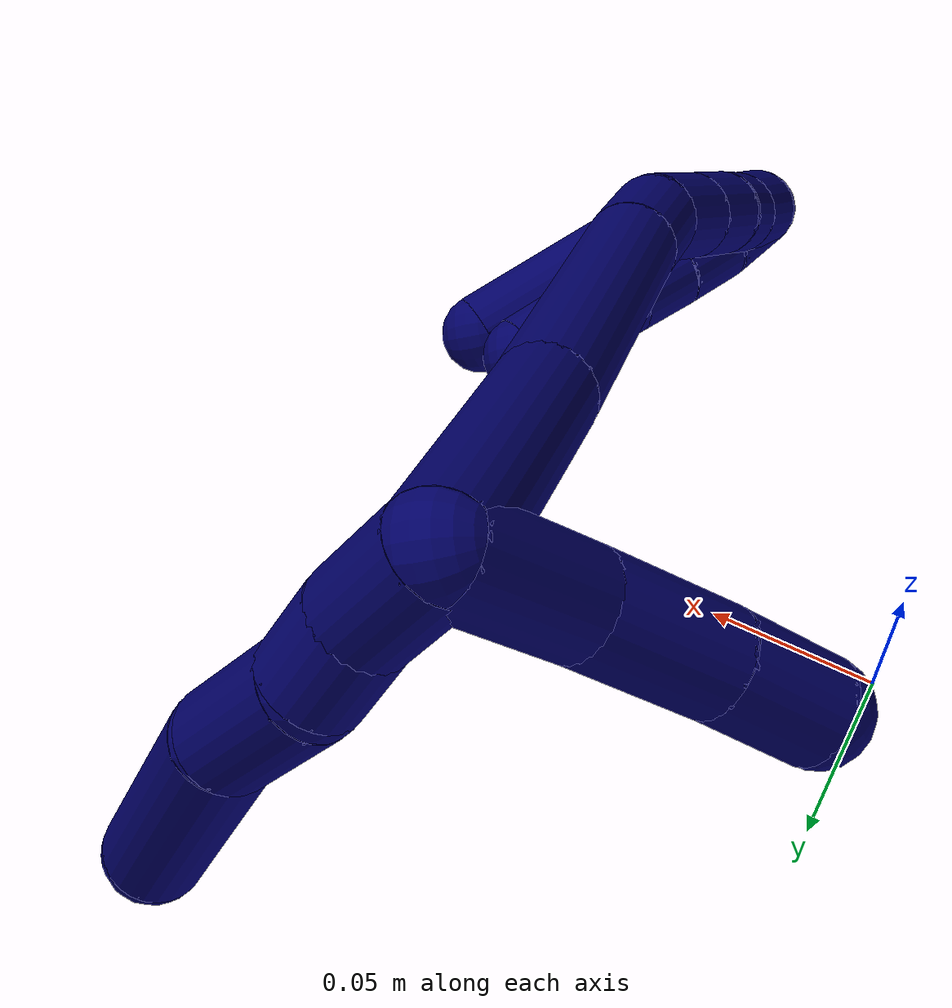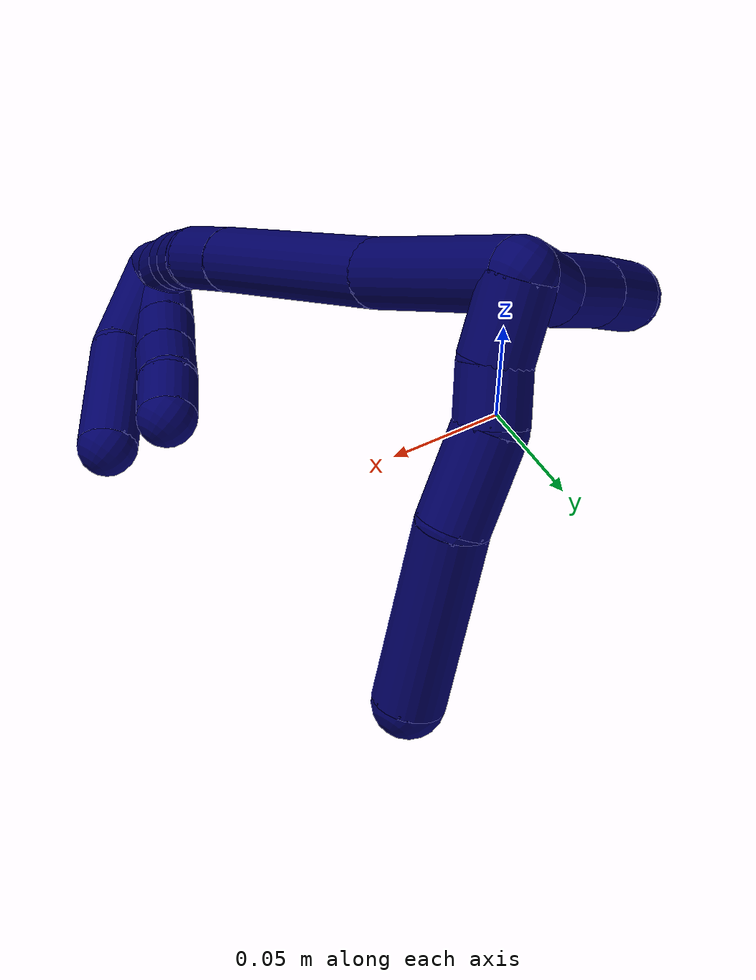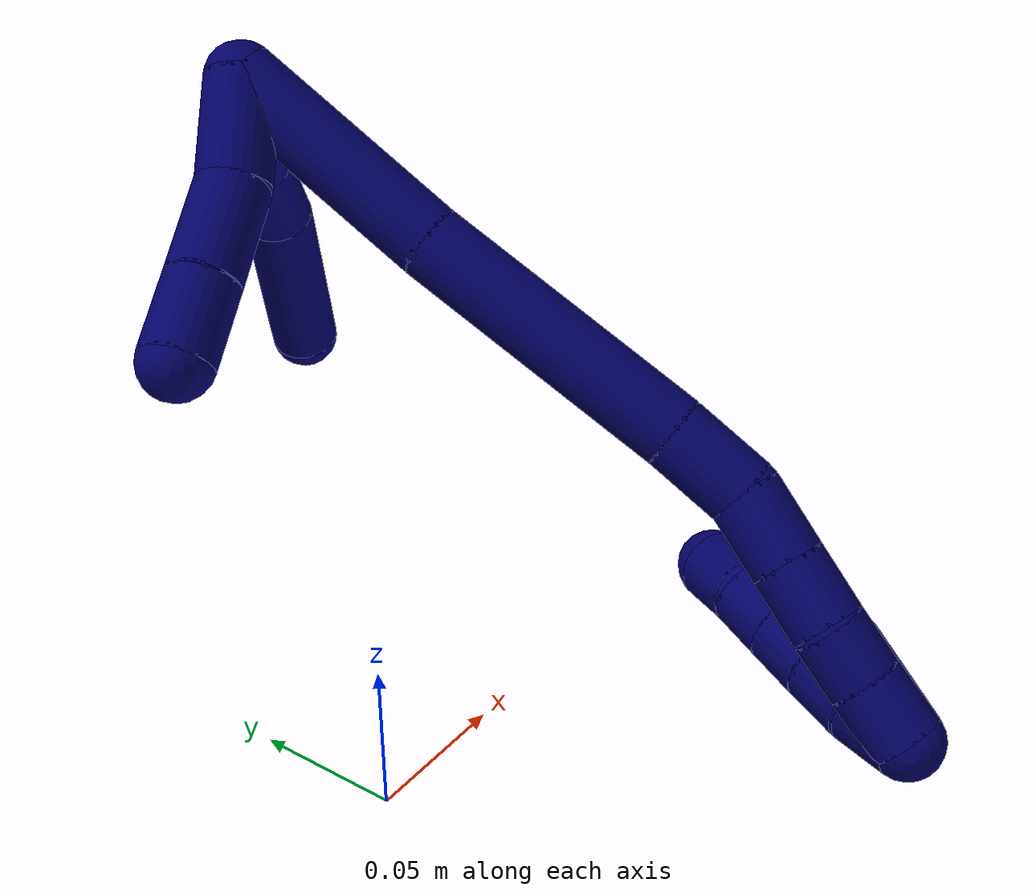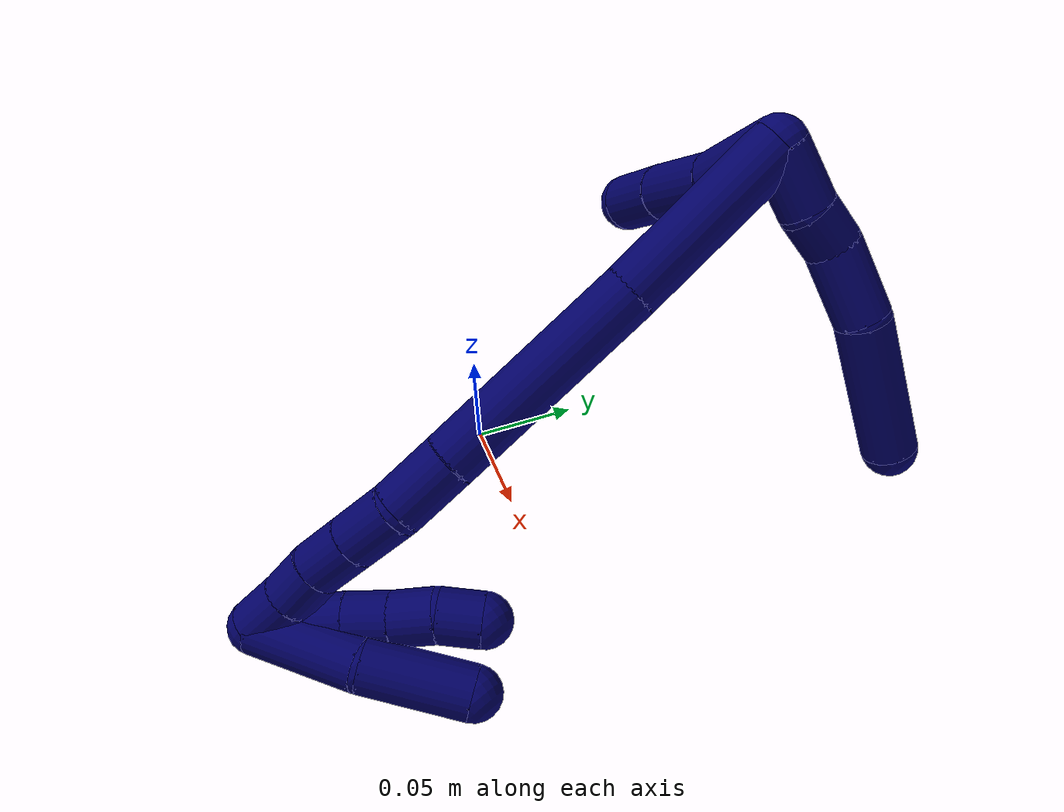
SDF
<sdf version="1.7">
 <world name="default">
  <model name="7">
   <static>0</static>
   <link name="7">
    <collision name="collision-cylinder-e_1_2_8">
     <pose>0.006175 -0.004767 0.011803 0.383822 0.451653 0.089221</pose>
     <geometry><cylinder><radius>0.0125</radius><length>0.028296</length></cylinder></geometry>
     <surface>
      <friction><ode><mu>1.16</mu><mu2>1.16</mu2><slip1>0</slip1><slip2>0</slip2></ode></friction>
      <contact><ode><kp>1e+06</kp><kd>1</kd><max_vel>0</max_vel><min_depth>0.001</min_depth></ode></contact>
     </surface>
    </collision>
    <visual name="visual-cylinder-e_1_2_8">
     <pose>0.006175 -0.004767 0.011803 0.383822 0.451653 0.089221</pose>
     <geometry><cylinder><radius>0.0125</radius><length>0.028296</length></cylinder></geometry>
     <material><ambient>0.003922 0 0.403922 1</ambient></material>
    </visual>
    <collision name="collision-cylinder-e_2_8_9">
     <pose>0.018493 -0.011401 0.031478 0.232927 0.649422 0.078725</pose>
     <geometry><cylinder><radius>0.0125</radius><length>0.020317</length></cylinder></geometry>
     <surface>
      <friction><ode><mu>1.16</mu><mu2>1.16</mu2><slip1>0</slip1><slip2>0</slip2></ode></friction>
      <contact><ode><kp>1e+06</kp><kd>1</kd><max_vel>0</max_vel><min_depth>0.001</min_depth></ode></contact>
     </surface>
    </collision>
    <visual name="visual-cylinder-e_2_8_9">
     <pose>0.018493 -0.011401 0.031478 0.232927 0.649422 0.078725</pose>
     <geometry><cylinder><radius>0.0125</radius><length>0.020317</length></cylinder></geometry>
     <material><ambient>0.003922 0 0.403922 1</ambient></material>
    </visual>
    <collision name="collision-cylinder-e_3_9_10">
     <pose>0.030842 -0.019607 0.054033 0.40756 0.370178 0.077344</pose>
     <geometry><cylinder><radius>0.0125</radius><length>0.034309</length></cylinder></geometry>
     <surface>
      <friction><ode><mu>1.16</mu><mu2>1.16</mu2><slip1>0</slip1><slip2>0</slip2></ode></friction>
      <contact><ode><kp>1e+06</kp><kd>1</kd><max_vel>0</max_vel><min_depth>0.001</min_depth></ode></contact>
     </surface>
    </collision>
    <visual name="visual-cylinder-e_3_9_10">
     <pose>0.030842 -0.019607 0.054033 0.40756 0.370178 0.077344</pose>
     <geometry><cylinder><radius>0.0125</radius><length>0.034309</length></cylinder></geometry>
     <material><ambient>0.003922 0 0.403922 1</ambient></material>
    </visual>
    <collision name="collision-cylinder-e_4_10_6">
     <pose>0.053843 -0.042848 0.092319 0.621432 0.524458 0.171957</pose>
     <geometry><cylinder><radius>0.0125</radius><length>0.067079</length></cylinder></geometry>
     <surface>
      <friction><ode><mu>1.16</mu><mu2>1.16</mu2><slip1>0</slip1><slip2>0</slip2></ode></friction>
      <contact><ode><kp>1e+06</kp><kd>1</kd><max_vel>0</max_vel><min_depth>0.001</min_depth></ode></contact>
     </surface>
    </collision>
    <visual name="visual-cylinder-e_4_10_6">
     <pose>0.053843 -0.042848 0.092319 0.621432 0.524458 0.171957</pose>
     <geometry><cylinder><radius>0.0125</radius><length>0.067079</length></cylinder></geometry>
     <material><ambient>0.003922 0 0.403922 1</ambient></material>
    </visual>
    <collision name="collision-cylinder-e_1_2_11">
     <pose>0.009479 -0.014551 -0.006799 2.00792 0.533151 0.810532</pose>
     <geometry><cylinder><radius>0.0125</radius><length>0.037299</length></cylinder></geometry>
     <surface>
      <friction><ode><mu>1.16</mu><mu2>1.16</mu2><slip1>0</slip1><slip2>0</slip2></ode></friction>
      <contact><ode><kp>1e+06</kp><kd>1</kd><max_vel>0</max_vel><min_depth>0.001</min_depth></ode></contact>
     </surface>
    </collision>
    <visual name="visual-cylinder-e_1_2_11">
     <pose>0.009479 -0.014551 -0.006799 2.00792 0.533151 0.810532</pose>
     <geometry><cylinder><radius>0.0125</radius><length>0.037299</length></cylinder></geometry>
     <material><ambient>0.003922 0 0.403922 1</ambient></material>
    </visual>
    <collision name="collision-cylinder-e_2_11_12">
     <pose>0.028837 -0.040022 -0.022698 2.26548 0.6074 1.17932</pose>
     <geometry><cylinder><radius>0.0125</radius><length>0.034622</length></cylinder></geometry>
     <surface>
      <friction><ode><mu>1.16</mu><mu2>1.16</mu2><slip1>0</slip1><slip2>0</slip2></ode></friction>
      <contact><ode><kp>1e+06</kp><kd>1</kd><max_vel>0</max_vel><min_depth>0.001</min_depth></ode></contact>
     </surface>
    </collision>
    <visual name="visual-cylinder-e_2_11_12">
     <pose>0.028837 -0.040022 -0.022698 2.26548 0.6074 1.17932</pose>
     <geometry><cylinder><radius>0.0125</radius><length>0.034622</length></cylinder></geometry>
     <material><ambient>0.003922 0 0.403922 1</ambient></material>
    </visual>
    <collision name="collision-cylinder-e_3_12_5">
     <pose>0.04715 -0.059768 -0.038733 2.2369 0.644319 1.20372</pose>
     <geometry><cylinder><radius>0.0125</radius><length>0.028079</length></cylinder></geometry>
     <surface>
      <friction><ode><mu>1.16</mu><mu2>1.16</mu2><slip1>0</slip1><slip2>0</slip2></ode></friction>
      <contact><ode><kp>1e+06</kp><kd>1</kd><max_vel>0</max_vel><min_depth>0.001</min_depth></ode></contact>
     </surface>
    </collision>
    <visual name="visual-cylinder-e_3_12_5">
     <pose>0.04715 -0.059768 -0.038733 2.2369 0.644319 1.20372</pose>
     <geometry><cylinder><radius>0.0125</radius><length>0.028079</length></cylinder></geometry>
     <material><ambient>0.003922 0 0.403922 1</ambient></material>
    </visual>
    <collision name="collision-cylinder-e_1_2_13">
     <pose>-0.009412 -0.039154 0.001716 1.52699 -0.235687 -0.225671</pose>
     <geometry><cylinder><radius>0.0125</radius><length>0.080612</length></cylinder></geometry>
     <surface>
      <friction><ode><mu>1.16</mu><mu2>1.16</mu2><slip1>0</slip1><slip2>0</slip2></ode></friction>
      <contact><ode><kp>1e+06</kp><kd>1</kd><max_vel>0</max_vel><min_depth>0.001</min_depth></ode></contact>
     </surface>
    </collision>
    <visual name="visual-cylinder-e_1_2_13">
     <pose>-0.009412 -0.039154 0.001716 1.52699 -0.235687 -0.225671</pose>
     <geometry><cylinder><radius>0.0125</radius><length>0.080612</length></cylinder></geometry>
     <material><ambient>0.003922 0 0.403922 1</ambient></material>
    </visual>
    <collision name="collision-cylinder-e_2_13_14">
     <pose>-0.032958 -0.125725 0.004724 1.54356 -0.289606 -0.281929</pose>
     <geometry><cylinder><radius>0.0125</radius><length>0.098991</length></cylinder></geometry>
     <surface>
      <friction><ode><mu>1.16</mu><mu2>1.16</mu2><slip1>0</slip1><slip2>0</slip2></ode></friction>
      <contact><ode><kp>1e+06</kp><kd>1</kd><max_vel>0</max_vel><min_depth>0.001</min_depth></ode></contact>
     </surface>
    </collision>
    <visual name="visual-cylinder-e_2_13_14">
     <pose>-0.032958 -0.125725 0.004724 1.54356 -0.289606 -0.281929</pose>
     <geometry><cylinder><radius>0.0125</radius><length>0.098991</length></cylinder></geometry>
     <material><ambient>0.003922 0 0.403922 1</ambient></material>
    </visual>
    <collision name="collision-cylinder-e_3_14_15">
     <pose>-0.050572 -0.187352 0.006125 1.56308 -0.240097 -0.23827</pose>
     <geometry><cylinder><radius>0.0125</radius><length>0.029262</length></cylinder></geometry>
     <surface>
      <friction><ode><mu>1.16</mu><mu2>1.16</mu2><slip1>0</slip1><slip2>0</slip2></ode></friction>
      <contact><ode><kp>1e+06</kp><kd>1</kd><max_vel>0</max_vel><min_depth>0.001</min_depth></ode></contact>
     </surface>
    </collision>
    <visual name="visual-cylinder-e_3_14_15">
     <pose>-0.050572 -0.187352 0.006125 1.56308 -0.240097 -0.23827</pose>
     <geometry><cylinder><radius>0.0125</radius><length>0.029262</length></cylinder></geometry>
     <material><ambient>0.003922 0 0.403922 1</ambient></material>
    </visual>
    <collision name="collision-cylinder-e_4_15_16">
     <pose>-0.053579 -0.214276 0.004312 1.72087 0.036734 0.042704</pose>
     <geometry><cylinder><radius>0.0125</radius><length>0.025731</length></cylinder></geometry>
     <surface>
      <friction><ode><mu>1.16</mu><mu2>1.16</mu2><slip1>0</slip1><slip2>0</slip2></ode></friction>
      <contact><ode><kp>1e+06</kp><kd>1</kd><max_vel>0</max_vel><min_depth>0.001</min_depth></ode></contact>
     </surface>
    </collision>
    <visual name="visual-cylinder-e_4_15_16">
     <pose>-0.053579 -0.214276 0.004312 1.72087 0.036734 0.042704</pose>
     <geometry><cylinder><radius>0.0125</radius><length>0.025731</length></cylinder></geometry>
     <material><ambient>0.003922 0 0.403922 1</ambient></material>
    </visual>
    <collision name="collision-cylinder-e_5_16_17">
     <pose>-0.052757 -0.238362 0.00069 1.71916 0.030357 0.03523</pose>
     <geometry><cylinder><radius>0.0125</radius><length>0.023011</length></cylinder></geometry>
     <surface>
      <friction><ode><mu>1.16</mu><mu2>1.16</mu2><slip1>0</slip1><slip2>0</slip2></ode></friction>
      <contact><ode><kp>1e+06</kp><kd>1</kd><max_vel>0</max_vel><min_depth>0.001</min_depth></ode></contact>
     </surface>
    </collision>
    <visual name="visual-cylinder-e_5_16_17">
     <pose>-0.052757 -0.238362 0.00069 1.71916 0.030357 0.03523</pose>
     <geometry><cylinder><radius>0.0125</radius><length>0.023011</length></cylinder></geometry>
     <material><ambient>0.003922 0 0.403922 1</ambient></material>
    </visual>
    <collision name="collision-cylinder-e_6_17_18">
     <pose>-0.052106 -0.259776 -0.001031 1.57292 0.030095 0.030159</pose>
     <geometry><cylinder><radius>0.0125</radius><length>0.02009</length></cylinder></geometry>
     <surface>
      <friction><ode><mu>1.16</mu><mu2>1.16</mu2><slip1>0</slip1><slip2>0</slip2></ode></friction>
      <contact><ode><kp>1e+06</kp><kd>1</kd><max_vel>0</max_vel><min_depth>0.001</min_depth></ode></contact>
     </surface>
    </collision>
    <visual name="visual-cylinder-e_6_17_18">
     <pose>-0.052106 -0.259776 -0.001031 1.57292 0.030095 0.030159</pose>
     <geometry><cylinder><radius>0.0125</radius><length>0.02009</length></cylinder></geometry>
     <material><ambient>0.003922 0 0.403922 1</ambient></material>
    </visual>
    <collision name="collision-cylinder-e_7_18_1">
     <pose>-0.051917 -0.280938 -0.001858 1.64313 -0.010179 -0.010943</pose>
     <geometry><cylinder><radius>0.0125</radius><length>0.022303</length></cylinder></geometry>
     <surface>
      <friction><ode><mu>1.16</mu><mu2>1.16</mu2><slip1>0</slip1><slip2>0</slip2></ode></friction>
      <contact><ode><kp>1e+06</kp><kd>1</kd><max_vel>0</max_vel><min_depth>0.001</min_depth></ode></contact>
     </surface>
    </collision>
    <visual name="visual-cylinder-e_7_18_1">
     <pose>-0.051917 -0.280938 -0.001858 1.64313 -0.010179 -0.010943</pose>
     <geometry><cylinder><radius>0.0125</radius><length>0.022303</length></cylinder></geometry>
     <material><ambient>0.003922 0 0.403922 1</ambient></material>
    </visual>
    <collision name="collision-cylinder-e_1_1_19">
     <pose>-0.049344 -0.278938 0.019031 -0.543997 0.10557 -0.02947</pose>
     <geometry><cylinder><radius>0.0125</radius><length>0.050994</length></cylinder></geometry>
     <surface>
      <friction><ode><mu>1.16</mu><mu2>1.16</mu2><slip1>0</slip1><slip2>0</slip2></ode></friction>
      <contact><ode><kp>1e+06</kp><kd>1</kd><max_vel>0</max_vel><min_depth>0.001</min_depth></ode></contact>
     </surface>
    </collision>
    <visual name="visual-cylinder-e_1_1_19">
     <pose>-0.049344 -0.278938 0.019031 -0.543997 0.10557 -0.02947</pose>
     <geometry><cylinder><radius>0.0125</radius><length>0.050994</length></cylinder></geometry>
     <material><ambient>0.003922 0 0.403922 1</ambient></material>
    </visual>
    <collision name="collision-cylinder-e_2_19_4">
     <pose>-0.038625 -0.253753 0.060484 -0.548084 0.333956 -0.094692</pose>
     <geometry><cylinder><radius>0.0125</radius><length>0.049006</length></cylinder></geometry>
     <surface>
      <friction><ode><mu>1.16</mu><mu2>1.16</mu2><slip1>0</slip1><slip2>0</slip2></ode></friction>
      <contact><ode><kp>1e+06</kp><kd>1</kd><max_vel>0</max_vel><min_depth>0.001</min_depth></ode></contact>
     </surface>
    </collision>
    <visual name="visual-cylinder-e_2_19_4">
     <pose>-0.038625 -0.253753 0.060484 -0.548084 0.333956 -0.094692</pose>
     <geometry><cylinder><radius>0.0125</radius><length>0.049006</length></cylinder></geometry>
     <material><ambient>0.003922 0 0.403922 1</ambient></material>
    </visual>
    <collision name="collision-cylinder-e_1_1_20">
     <pose>-0.048051 -0.284918 0.003094 -0.892289 0.409282 -0.197894</pose>
     <geometry><cylinder><radius>0.0125</radius><length>0.02</length></cylinder></geometry>
     <surface>
      <friction><ode><mu>1.16</mu><mu2>1.16</mu2><slip1>0</slip1><slip2>0</slip2></ode></friction>
      <contact><ode><kp>1e+06</kp><kd>1</kd><max_vel>0</max_vel><min_depth>0.001</min_depth></ode></contact>
     </surface>
    </collision>
    <visual name="visual-cylinder-e_1_1_20">
     <pose>-0.048051 -0.284918 0.003094 -0.892289 0.409282 -0.197894</pose>
     <geometry><cylinder><radius>0.0125</radius><length>0.02</length></cylinder></geometry>
     <material><ambient>0.003922 0 0.403922 1</ambient></material>
    </visual>
    <collision name="collision-cylinder-e_2_20_21">
     <pose>-0.041309 -0.270339 0.014939 -0.884855 0.279877 -0.133266</pose>
     <geometry><cylinder><radius>0.0125</radius><length>0.02</length></cylinder></geometry>
     <surface>
      <friction><ode><mu>1.16</mu><mu2>1.16</mu2><slip1>0</slip1><slip2>0</slip2></ode></friction>
      <contact><ode><kp>1e+06</kp><kd>1</kd><max_vel>0</max_vel><min_depth>0.001</min_depth></ode></contact>
     </surface>
    </collision>
    <visual name="visual-cylinder-e_2_20_21">
     <pose>-0.041309 -0.270339 0.014939 -0.884855 0.279877 -0.133266</pose>
     <geometry><cylinder><radius>0.0125</radius><length>0.02</length></cylinder></geometry>
     <material><ambient>0.003922 0 0.403922 1</ambient></material>
    </visual>
    <collision name="collision-cylinder-e_3_21_22">
     <pose>-0.035973 -0.255603 0.02736 -0.856089 0.260285 -0.11929</pose>
     <geometry><cylinder><radius>0.0125</radius><length>0.02</length></cylinder></geometry>
     <surface>
      <friction><ode><mu>1.16</mu><mu2>1.16</mu2><slip1>0</slip1><slip2>0</slip2></ode></friction>
      <contact><ode><kp>1e+06</kp><kd>1</kd><max_vel>0</max_vel><min_depth>0.001</min_depth></ode></contact>
     </surface>
    </collision>
    <visual name="visual-cylinder-e_3_21_22">
     <pose>-0.035973 -0.255603 0.02736 -0.856089 0.260285 -0.11929</pose>
     <geometry><cylinder><radius>0.0125</radius><length>0.02</length></cylinder></geometry>
     <material><ambient>0.003922 0 0.403922 1</ambient></material>
    </visual>
    <collision name="collision-cylinder-e_4_22_23">
     <pose>-0.03094 -0.240534 0.039487 -0.930125 0.248474 -0.125158</pose>
     <geometry><cylinder><radius>0.0125</radius><length>0.02</length></cylinder></geometry>
     <surface>
      <friction><ode><mu>1.16</mu><mu2>1.16</mu2><slip1>0</slip1><slip2>0</slip2></ode></friction>
      <contact><ode><kp>1e+06</kp><kd>1</kd><max_vel>0</max_vel><min_depth>0.001</min_depth></ode></contact>
     </surface>
    </collision>
    <visual name="visual-cylinder-e_4_22_23">
     <pose>-0.03094 -0.240534 0.039487 -0.930125 0.248474 -0.125158</pose>
     <geometry><cylinder><radius>0.0125</radius><length>0.02</length></cylinder></geometry>
     <material><ambient>0.003922 0 0.403922 1</ambient></material>
    </visual>
    <collision name="collision-cylinder-e_5_23_3">
     <pose>-0.025216 -0.22666 0.052498 -0.701981 0.332559 -0.122747</pose>
     <geometry><cylinder><radius>0.0125</radius><length>0.02</length></cylinder></geometry>
     <surface>
      <friction><ode><mu>1.16</mu><mu2>1.16</mu2><slip1>0</slip1><slip2>0</slip2></ode></friction>
      <contact><ode><kp>1e+06</kp><kd>1</kd><max_vel>0</max_vel><min_depth>0.001</min_depth></ode></contact>
     </surface>
    </collision>
    <visual name="visual-cylinder-e_5_23_3">
     <pose>-0.025216 -0.22666 0.052498 -0.701981 0.332559 -0.122747</pose>
     <geometry><cylinder><radius>0.0125</radius><length>0.02</length></cylinder></geometry>
     <material><ambient>0.003922 0 0.403922 1</ambient></material>
    </visual>
    <collision name="collision-sphere-3">
     <pose>-0.021952 -0.220556 0.059715 0 -0 0</pose>
     <geometry><sphere><radius>0.0125</radius></sphere></geometry>
     <surface>
      <friction><ode><mu>1.16</mu><mu2>1.16</mu2><slip1>0</slip1><slip2>0</slip2></ode></friction>
      <contact><ode><kp>1e+06</kp><kd>1</kd><max_vel>0</max_vel><min_depth>0.001</min_depth></ode></contact>
     </surface>
    </collision>
    <visual name="visual-sphere-3">
     <pose>-0.021952 -0.220556 0.059715 0 -0 0</pose>
     <geometry><sphere><radius>0.0125</radius></sphere></geometry>
     <material><ambient>0.003922 0 0.403922 1</ambient></material>
    </visual>
    <collision name="collision-sphere-23">
     <pose>-0.028481 -0.232763 0.045281 0 -0 0</pose>
     <geometry><sphere><radius>0.0125</radius></sphere></geometry>
     <surface>
      <friction><ode><mu>1.16</mu><mu2>1.16</mu2><slip1>0</slip1><slip2>0</slip2></ode></friction>
      <contact><ode><kp>1e+06</kp><kd>1</kd><max_vel>0</max_vel><min_depth>0.001</min_depth></ode></contact>
     </surface>
    </collision>
    <visual name="visual-sphere-23">
     <pose>-0.028481 -0.232763 0.045281 0 -0 0</pose>
     <geometry><sphere><radius>0.0125</radius></sphere></geometry>
     <material><ambient>0.003922 0 0.403922 1</ambient></material>
    </visual>
    <collision name="collision-sphere-22">
     <pose>-0.0334 -0.248305 0.033693 0 -0 0</pose>
     <geometry><sphere><radius>0.0125</radius></sphere></geometry>
     <surface>
      <friction><ode><mu>1.16</mu><mu2>1.16</mu2><slip1>0</slip1><slip2>0</slip2></ode></friction>
      <contact><ode><kp>1e+06</kp><kd>1</kd><max_vel>0</max_vel><min_depth>0.001</min_depth></ode></contact>
     </surface>
    </collision>
    <visual name="visual-sphere-22">
     <pose>-0.0334 -0.248305 0.033693 0 -0 0</pose>
     <geometry><sphere><radius>0.0125</radius></sphere></geometry>
     <material><ambient>0.003922 0 0.403922 1</ambient></material>
    </visual>
    <collision name="collision-sphere-21">
     <pose>-0.038547 -0.262902 0.021027 0 -0 0</pose>
     <geometry><sphere><radius>0.0125</radius></sphere></geometry>
     <surface>
      <friction><ode><mu>1.16</mu><mu2>1.16</mu2><slip1>0</slip1><slip2>0</slip2></ode></friction>
      <contact><ode><kp>1e+06</kp><kd>1</kd><max_vel>0</max_vel><min_depth>0.001</min_depth></ode></contact>
     </surface>
    </collision>
    <visual name="visual-sphere-21">
     <pose>-0.038547 -0.262902 0.021027 0 -0 0</pose>
     <geometry><sphere><radius>0.0125</radius></sphere></geometry>
     <material><ambient>0.003922 0 0.403922 1</ambient></material>
    </visual>
    <collision name="collision-sphere-20">
     <pose>-0.044071 -0.277776 0.008852 0 -0 0</pose>
     <geometry><sphere><radius>0.0125</radius></sphere></geometry>
     <surface>
      <friction><ode><mu>1.16</mu><mu2>1.16</mu2><slip1>0</slip1><slip2>0</slip2></ode></friction>
      <contact><ode><kp>1e+06</kp><kd>1</kd><max_vel>0</max_vel><min_depth>0.001</min_depth></ode></contact>
     </surface>
    </collision>
    <visual name="visual-sphere-20">
     <pose>-0.044071 -0.277776 0.008852 0 -0 0</pose>
     <geometry><sphere><radius>0.0125</radius></sphere></geometry>
     <material><ambient>0.003922 0 0.403922 1</ambient></material>
    </visual>
    <collision name="collision-sphere-4">
     <pose>-0.030594 -0.241691 0.080243 0 -0 0</pose>
     <geometry><sphere><radius>0.0125</radius></sphere></geometry>
     <surface>
      <friction><ode><mu>1.16</mu><mu2>1.16</mu2><slip1>0</slip1><slip2>0</slip2></ode></friction>
      <contact><ode><kp>1e+06</kp><kd>1</kd><max_vel>0</max_vel><min_depth>0.001</min_depth></ode></contact>
     </surface>
    </collision>
    <visual name="visual-sphere-4">
     <pose>-0.030594 -0.241691 0.080243 0 -0 0</pose>
     <geometry><sphere><radius>0.0125</radius></sphere></geometry>
     <material><ambient>0.003922 0 0.403922 1</ambient></material>
    </visual>
    <collision name="collision-sphere-11">
     <pose>0.018957 -0.029102 -0.013598 0 -0 0</pose>
     <geometry><sphere><radius>0.0125</radius></sphere></geometry>
     <surface>
      <friction><ode><mu>1.16</mu><mu2>1.16</mu2><slip1>0</slip1><slip2>0</slip2></ode></friction>
      <contact><ode><kp>1e+06</kp><kd>1</kd><max_vel>0</max_vel><min_depth>0.001</min_depth></ode></contact>
     </surface>
    </collision>
    <visual name="visual-sphere-11">
     <pose>0.018957 -0.029102 -0.013598 0 -0 0</pose>
     <geometry><sphere><radius>0.0125</radius></sphere></geometry>
     <material><ambient>0.003922 0 0.403922 1</ambient></material>
    </visual>
    <collision name="collision-sphere-6">
     <pose>0.070637 -0.05975 0.115923 0 -0 0</pose>
     <geometry><sphere><radius>0.0125</radius></sphere></geometry>
     <surface>
      <friction><ode><mu>1.16</mu><mu2>1.16</mu2><slip1>0</slip1><slip2>0</slip2></ode></friction>
      <contact><ode><kp>1e+06</kp><kd>1</kd><max_vel>0</max_vel><min_depth>0.001</min_depth></ode></contact>
     </surface>
    </collision>
    <visual name="visual-sphere-6">
     <pose>0.070637 -0.05975 0.115923 0 -0 0</pose>
     <geometry><sphere><radius>0.0125</radius></sphere></geometry>
     <material><ambient>0.003922 0 0.403922 1</ambient></material>
    </visual>
    <collision name="collision-sphere-10">
     <pose>0.037048 -0.025946 0.068715 0 -0 0</pose>
     <geometry><sphere><radius>0.0125</radius></sphere></geometry>
     <surface>
      <friction><ode><mu>1.16</mu><mu2>1.16</mu2><slip1>0</slip1><slip2>0</slip2></ode></friction>
      <contact><ode><kp>1e+06</kp><kd>1</kd><max_vel>0</max_vel><min_depth>0.001</min_depth></ode></contact>
     </surface>
    </collision>
    <visual name="visual-sphere-10">
     <pose>0.037048 -0.025946 0.068715 0 -0 0</pose>
     <geometry><sphere><radius>0.0125</radius></sphere></geometry>
     <material><ambient>0.003922 0 0.403922 1</ambient></material>
    </visual>
    <collision name="collision-sphere-9">
     <pose>0.024636 -0.013268 0.03935 0 -0 0</pose>
     <geometry><sphere><radius>0.0125</radius></sphere></geometry>
     <surface>
      <friction><ode><mu>1.16</mu><mu2>1.16</mu2><slip1>0</slip1><slip2>0</slip2></ode></friction>
      <contact><ode><kp>1e+06</kp><kd>1</kd><max_vel>0</max_vel><min_depth>0.001</min_depth></ode></contact>
     </surface>
    </collision>
    <visual name="visual-sphere-9">
     <pose>0.024636 -0.013268 0.03935 0 -0 0</pose>
     <geometry><sphere><radius>0.0125</radius></sphere></geometry>
     <material><ambient>0.003922 0 0.403922 1</ambient></material>
    </visual>
    <collision name="collision-sphere-2">
     <geometry><sphere><radius>0.0125</radius></sphere></geometry>
     <surface>
      <friction><ode><mu>1.16</mu><mu2>1.16</mu2><slip1>0</slip1><slip2>0</slip2></ode></friction>
      <contact><ode><kp>1e+06</kp><kd>1</kd><max_vel>0</max_vel><min_depth>0.001</min_depth></ode></contact>
     </surface>
    </collision>
    <visual name="visual-sphere-2">
     <geometry><sphere><radius>0.0125</radius></sphere></geometry>
     <material><ambient>0.003922 0 0.403922 1</ambient></material>
    </visual>
    <collision name="collision-sphere-19">
     <pose>-0.046657 -0.265815 0.040725 0 -0 0</pose>
     <geometry><sphere><radius>0.0125</radius></sphere></geometry>
     <surface>
      <friction><ode><mu>1.16</mu><mu2>1.16</mu2><slip1>0</slip1><slip2>0</slip2></ode></friction>
      <contact><ode><kp>1e+06</kp><kd>1</kd><max_vel>0</max_vel><min_depth>0.001</min_depth></ode></contact>
     </surface>
    </collision>
    <visual name="visual-sphere-19">
     <pose>-0.046657 -0.265815 0.040725 0 -0 0</pose>
     <geometry><sphere><radius>0.0125</radius></sphere></geometry>
     <material><ambient>0.003922 0 0.403922 1</ambient></material>
    </visual>
    <collision name="collision-sphere-8">
     <pose>0.01235 -0.009533 0.023606 0 -0 0</pose>
     <geometry><sphere><radius>0.0125</radius></sphere></geometry>
     <surface>
      <friction><ode><mu>1.16</mu><mu2>1.16</mu2><slip1>0</slip1><slip2>0</slip2></ode></friction>
      <contact><ode><kp>1e+06</kp><kd>1</kd><max_vel>0</max_vel><min_depth>0.001</min_depth></ode></contact>
     </surface>
    </collision>
    <visual name="visual-sphere-8">
     <pose>0.01235 -0.009533 0.023606 0 -0 0</pose>
     <geometry><sphere><radius>0.0125</radius></sphere></geometry>
     <material><ambient>0.003922 0 0.403922 1</ambient></material>
    </visual>
    <collision name="collision-sphere-12">
     <pose>0.038717 -0.050943 -0.031797 0 -0 0</pose>
     <geometry><sphere><radius>0.0125</radius></sphere></geometry>
     <surface>
      <friction><ode><mu>1.16</mu><mu2>1.16</mu2><slip1>0</slip1><slip2>0</slip2></ode></friction>
      <contact><ode><kp>1e+06</kp><kd>1</kd><max_vel>0</max_vel><min_depth>0.001</min_depth></ode></contact>
     </surface>
    </collision>
    <visual name="visual-sphere-12">
     <pose>0.038717 -0.050943 -0.031797 0 -0 0</pose>
     <geometry><sphere><radius>0.0125</radius></sphere></geometry>
     <material><ambient>0.003922 0 0.403922 1</ambient></material>
    </visual>
    <collision name="collision-sphere-5">
     <pose>0.055583 -0.068593 -0.045669 0 -0 0</pose>
     <geometry><sphere><radius>0.0125</radius></sphere></geometry>
     <surface>
      <friction><ode><mu>1.16</mu><mu2>1.16</mu2><slip1>0</slip1><slip2>0</slip2></ode></friction>
      <contact><ode><kp>1e+06</kp><kd>1</kd><max_vel>0</max_vel><min_depth>0.001</min_depth></ode></contact>
     </surface>
    </collision>
    <visual name="visual-sphere-5">
     <pose>0.055583 -0.068593 -0.045669 0 -0 0</pose>
     <geometry><sphere><radius>0.0125</radius></sphere></geometry>
     <material><ambient>0.003922 0 0.403922 1</ambient></material>
    </visual>
    <collision name="collision-sphere-13">
     <pose>-0.018824 -0.078308 0.003432 0 -0 0</pose>
     <geometry><sphere><radius>0.0125</radius></sphere></geometry>
     <surface>
      <friction><ode><mu>1.16</mu><mu2>1.16</mu2><slip1>0</slip1><slip2>0</slip2></ode></friction>
      <contact><ode><kp>1e+06</kp><kd>1</kd><max_vel>0</max_vel><min_depth>0.001</min_depth></ode></contact>
     </surface>
    </collision>
    <visual name="visual-sphere-13">
     <pose>-0.018824 -0.078308 0.003432 0 -0 0</pose>
     <geometry><sphere><radius>0.0125</radius></sphere></geometry>
     <material><ambient>0.003922 0 0.403922 1</ambient></material>
    </visual>
    <collision name="collision-sphere-14">
     <pose>-0.047093 -0.173141 0.006016 0 -0 0</pose>
     <geometry><sphere><radius>0.0125</radius></sphere></geometry>
     <surface>
      <friction><ode><mu>1.16</mu><mu2>1.16</mu2><slip1>0</slip1><slip2>0</slip2></ode></friction>
      <contact><ode><kp>1e+06</kp><kd>1</kd><max_vel>0</max_vel><min_depth>0.001</min_depth></ode></contact>
     </surface>
    </collision>
    <visual name="visual-sphere-14">
     <pose>-0.047093 -0.173141 0.006016 0 -0 0</pose>
     <geometry><sphere><radius>0.0125</radius></sphere></geometry>
     <material><ambient>0.003922 0 0.403922 1</ambient></material>
    </visual>
    <collision name="collision-sphere-15">
     <pose>-0.054051 -0.201563 0.006235 0 -0 0</pose>
     <geometry><sphere><radius>0.0125</radius></sphere></geometry>
     <surface>
      <friction><ode><mu>1.16</mu><mu2>1.16</mu2><slip1>0</slip1><slip2>0</slip2></ode></friction>
      <contact><ode><kp>1e+06</kp><kd>1</kd><max_vel>0</max_vel><min_depth>0.001</min_depth></ode></contact>
     </surface>
    </collision>
    <visual name="visual-sphere-15">
     <pose>-0.054051 -0.201563 0.006235 0 -0 0</pose>
     <geometry><sphere><radius>0.0125</radius></sphere></geometry>
     <material><ambient>0.003922 0 0.403922 1</ambient></material>
    </visual>
    <collision name="collision-sphere-16">
     <pose>-0.053106 -0.226988 0.00239 0 -0 0</pose>
     <geometry><sphere><radius>0.0125</radius></sphere></geometry>
     <surface>
      <friction><ode><mu>1.16</mu><mu2>1.16</mu2><slip1>0</slip1><slip2>0</slip2></ode></friction>
      <contact><ode><kp>1e+06</kp><kd>1</kd><max_vel>0</max_vel><min_depth>0.001</min_depth></ode></contact>
     </surface>
    </collision>
    <visual name="visual-sphere-16">
     <pose>-0.053106 -0.226988 0.00239 0 -0 0</pose>
     <geometry><sphere><radius>0.0125</radius></sphere></geometry>
     <material><ambient>0.003922 0 0.403922 1</ambient></material>
    </visual>
    <collision name="collision-sphere-17">
     <pose>-0.052408 -0.249736 -0.00101 0 -0 0</pose>
     <geometry><sphere><radius>0.0125</radius></sphere></geometry>
     <surface>
      <friction><ode><mu>1.16</mu><mu2>1.16</mu2><slip1>0</slip1><slip2>0</slip2></ode></friction>
      <contact><ode><kp>1e+06</kp><kd>1</kd><max_vel>0</max_vel><min_depth>0.001</min_depth></ode></contact>
     </surface>
    </collision>
    <visual name="visual-sphere-17">
     <pose>-0.052408 -0.249736 -0.00101 0 -0 0</pose>
     <geometry><sphere><radius>0.0125</radius></sphere></geometry>
     <material><ambient>0.003922 0 0.403922 1</ambient></material>
    </visual>
    <collision name="collision-sphere-18">
     <pose>-0.051803 -0.269816 -0.001053 0 -0 0</pose>
     <geometry><sphere><radius>0.0125</radius></sphere></geometry>
     <surface>
      <friction><ode><mu>1.16</mu><mu2>1.16</mu2><slip1>0</slip1><slip2>0</slip2></ode></friction>
      <contact><ode><kp>1e+06</kp><kd>1</kd><max_vel>0</max_vel><min_depth>0.001</min_depth></ode></contact>
     </surface>
    </collision>
    <visual name="visual-sphere-18">
     <pose>-0.051803 -0.269816 -0.001053 0 -0 0</pose>
     <geometry><sphere><radius>0.0125</radius></sphere></geometry>
     <material><ambient>0.003922 0 0.403922 1</ambient></material>
    </visual>
    <collision name="collision-sphere-1">
     <pose>-0.052031 -0.29206 -0.002664 0 -0 0</pose>
     <geometry><sphere><radius>0.0125</radius></sphere></geometry>
     <surface>
      <friction><ode><mu>1.16</mu><mu2>1.16</mu2><slip1>0</slip1><slip2>0</slip2></ode></friction>
      <contact><ode><kp>1e+06</kp><kd>1</kd><max_vel>0</max_vel><min_depth>0.001</min_depth></ode></contact>
     </surface>
    </collision>
    <visual name="visual-sphere-1">
     <pose>-0.052031 -0.29206 -0.002664 0 -0 0</pose>
     <geometry><sphere><radius>0.0125</radius></sphere></geometry>
     <material><ambient>0.003922 0 0.403922 1</ambient></material>
    </visual>
    <inertial>
     <pose>-0.013922 -0.137744 0.019233 0 -0 0</pose>
     <mass>0.75</mass>
     <inertia><ixx>0.00019</ixx><ixy>0</ixy><ixz>0</ixz><iyy>2.8e-05</iyy><iyz>0</iyz><izz>0.000166</izz></inertia>
    </inertial>
   </link>
   <pose>0.074911 0.110102 0.193149 2.07917 0.644223 2.29046</pose>
  </model>
 </world>
</sdf>
